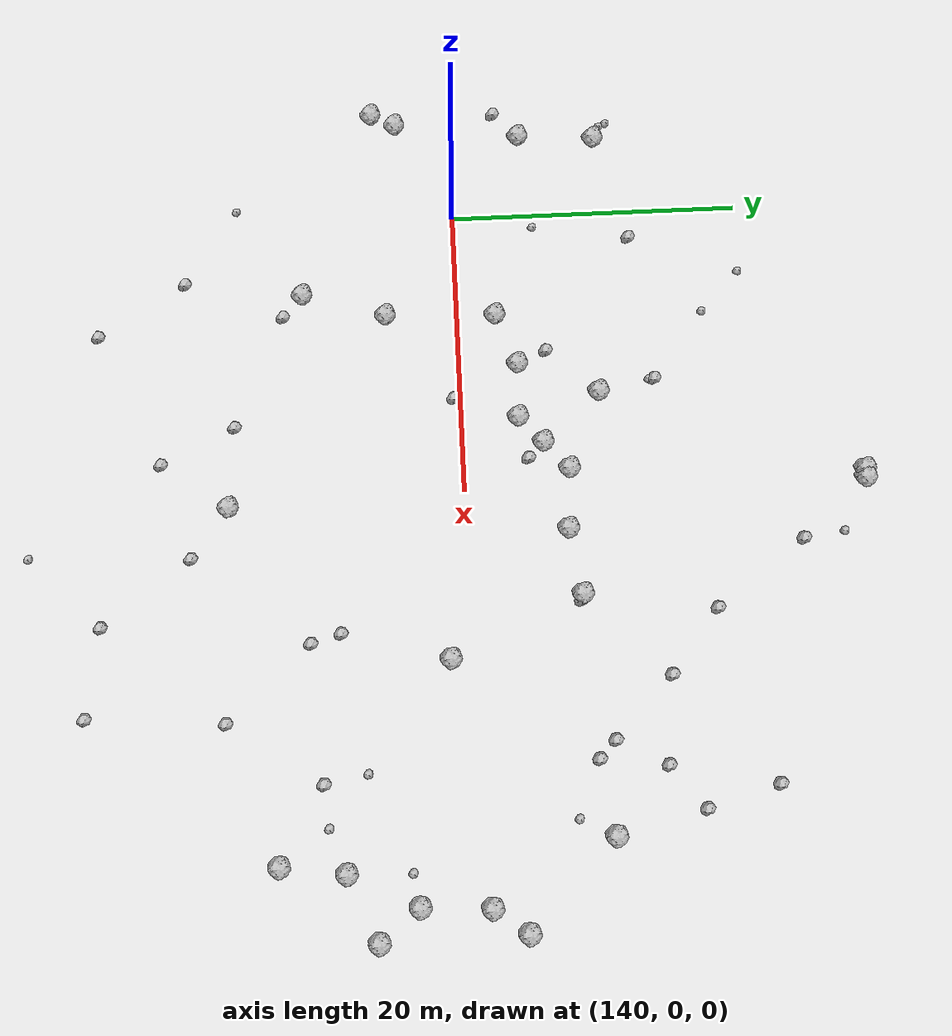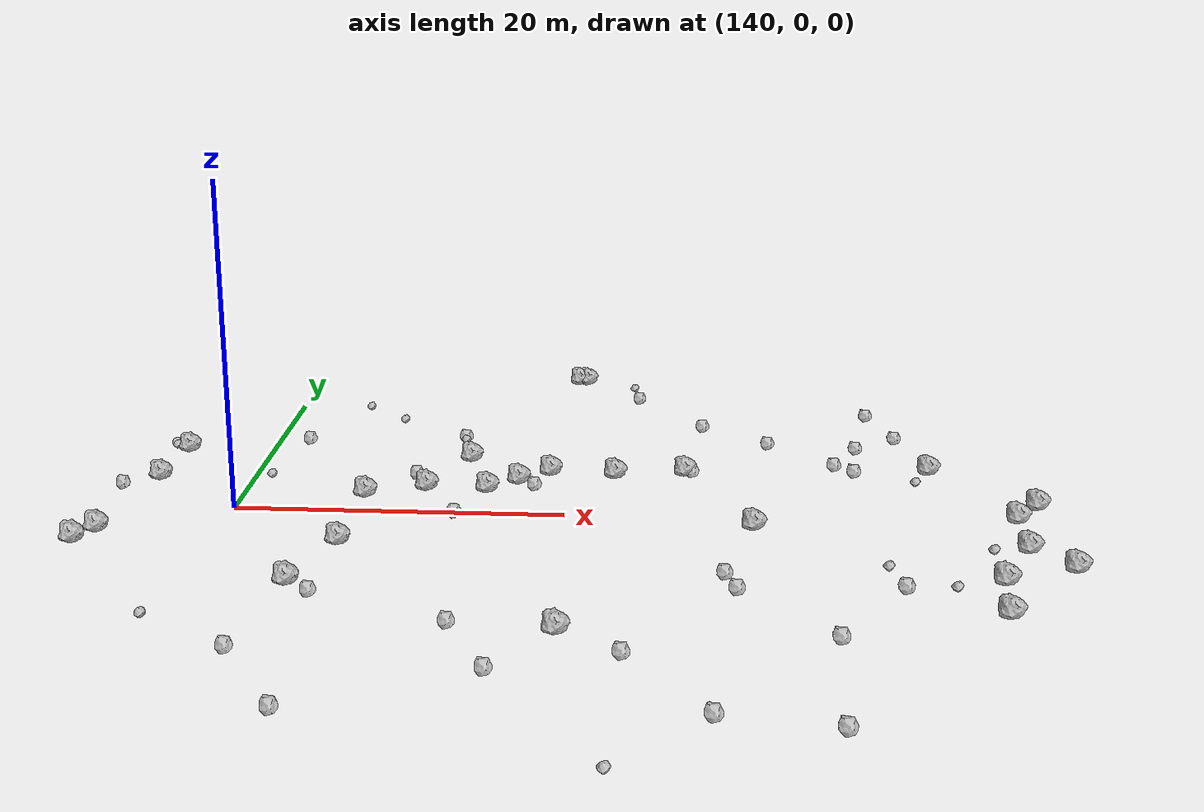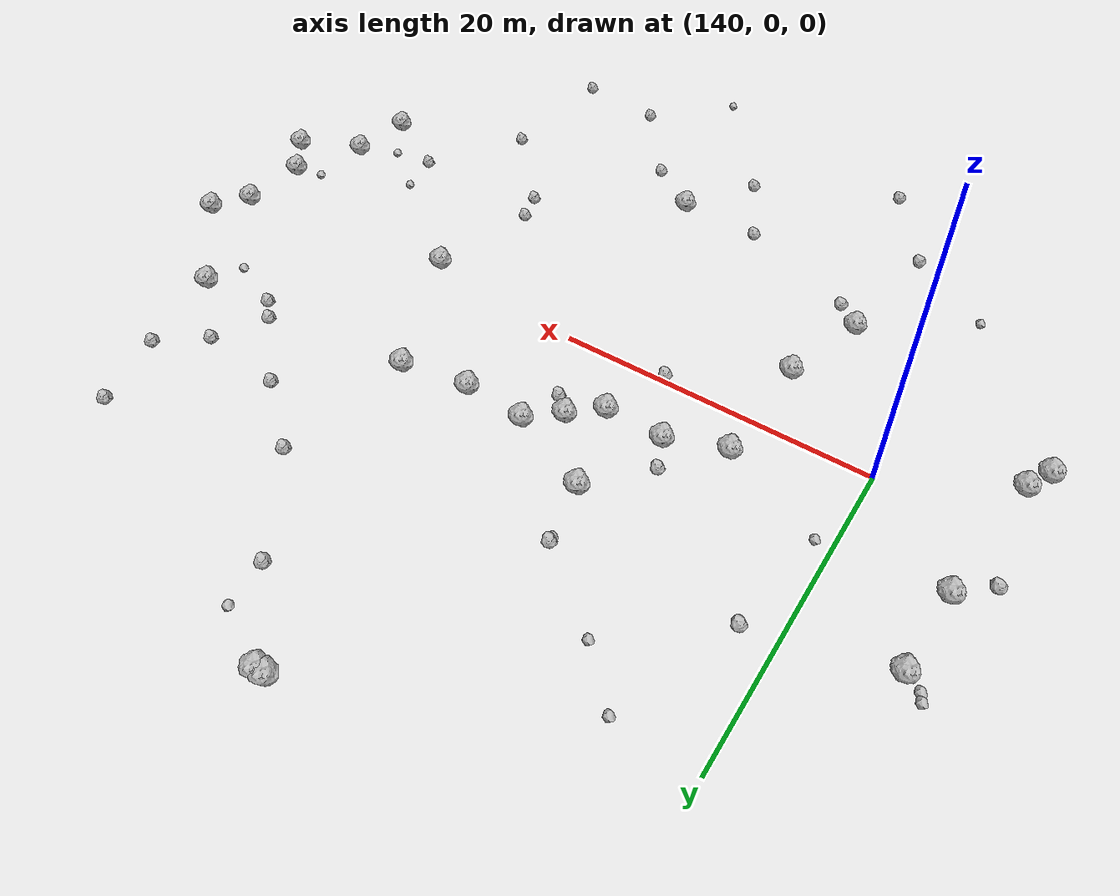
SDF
<sdf version="1.6">
 <world name="default">
  <include><uri>model://sun</uri></include>
  <model name="rock1_4_2">
   <include><uri>model://rock1</uri><pose>187.00550622715133 0.6103401370750916 0.5 0 0 0</pose></include>
  </model>
  <model name="rock1_4_3">
   <include><uri>model://rock1</uri><pose>134.34954489416586 10.308147139617567 0.5 0 0 0</pose></include>
  </model>
  <model name="rock1_4_4">
   <include><uri>model://rock1</uri><pose>183.9584216753731 -12.67865444864849 0.5 0 0 0</pose></include>
  </model>
  <model name="rock1_4_5">
   <include><uri>model://rock1</uri><pose>171.2788944345109 -1.3424860000762209 0.5 0 0 0</pose></include>
  </model>
  <model name="rock1_4_6">
   <include><uri>model://rock1</uri><pose>184.54558585470934 -8.44045858939075 0.5 0 0 0</pose></include>
  </model>
  <model name="rock1_4_7">
   <include><uri>model://rock1</uri><pose>160.5387409248106 -15.850900597289556 0.5 0 0 0</pose></include>
  </model>
  <model name="rock1_4_8">
   <include><uri>model://rock1</uri><pose>131.91497808373379 -5.542450798676562 0.5 0 0 0</pose></include>
  </model>
  <model name="rock1_4_9">
   <include><uri>model://rock1</uri><pose>188.78952291040056 -6.510709008335244 0.5 0 0 0</pose></include>
  </model>
  <model name="rock1_4_10">
   <include><uri>model://rock1</uri><pose>182.935248199146 8.641562064542143 0.5 0 0 0</pose></include>
  </model>
  <model name="rock1_4_11">
   <include><uri>model://rock1</uri><pose>153.3944512263985 9.487726123466459 0.5 0 0 0</pose></include>
  </model>
  <model name="rock1_4_12">
   <include><uri>model://rock1</uri><pose>159.63277634071284 27.069953922631527 0.5 0 0 0</pose></include>
  </model>
  <model name="rock1_4_13">
   <include><uri>model://rock1</uri><pose>160.22288265443294 27.057906458670836 0.5 0 0 0</pose></include>
  </model>
  <model name="rock1_4_14">
   <include><uri>model://rock1</uri><pose>147.52917723722808 2.664538504593125 0.5 0 0 0</pose></include>
  </model>
  <model name="rock1_4_15">
   <include><uri>model://rock1</uri><pose>158.74149719504692 7.171293239102667 0.5 0 0 0</pose></include>
  </model>
  <model name="rock1_4_16">
   <include><uri>model://rock1</uri><pose>188.616479616116 2.837000885398126 0.5 0 0 0</pose></include>
  </model>
  <model name="rock1_4_17">
   <include><uri>model://rock1</uri><pose>156.82016101017408 5.507798254430639 0.5 0 0 0</pose></include>
  </model>
  <model name="rock1_4_18">
   <include><uri>model://rock1</uri><pose>147.2771569033912 -4.937849744133679 0.5 0 0 0</pose></include>
  </model>
  <model name="rock1_4_19">
   <include><uri>model://rock1</uri><pose>132.7766824658629 -3.862351609037347 0.5 0 0 0</pose></include>
  </model>
  <model name="rock1_4_20">
   <include><uri>model://rock1</uri><pose>167.34313789538464 7.531367010324509 0.5 0 0 0</pose></include>
  </model>
  <model name="rock1_4_21">
   <include><uri>model://rock1</uri><pose>133.9767895236569 4.934718757093819 0.5 0 0 0</pose></include>
  </model>
  <model name="rock1_4_22">
   <include><uri>model://rock1</uri><pose>162.89087628736655 6.85362852298222 0.5 0 0 0</pose></include>
  </model>
  <model name="rock1_4_23">
   <include><uri>model://rock1</uri><pose>145.55582621933067 -10.677060882358784 0.5 0 0 0</pose></include>
  </model>
  <model name="rock1_4_24">
   <include><uri>model://rock1</uri><pose>186.7472535983882 -3.90465628346249 0.5 0 0 0</pose></include>
  </model>
  <model name="rock1_4_25">
   <include><uri>model://rock1</uri><pose>154.98172468662318 3.895954091575156 0.5 0 0 0</pose></include>
  </model>
  <model name="rock1_4_26">
   <include><uri>model://rock1</uri><pose>151.16202967781078 4.030362586822605 0.5 0 0 0</pose></include>
  </model>
  <model name="rock2_4_0">
   <include><uri>model://rock2</uri><pose>178.95318555822752 -9.786046382811872 0.3 0 0 0</pose></include>
  </model>
  <model name="rock2_4_1">
   <include><uri>model://rock2</uri><pose>168.27661705096685 -24.262425412030115 0.3 0 0 0</pose></include>
  </model>
  <model name="rock2_4_2">
   <include><uri>model://rock2</uri><pose>150.24464888971056 6.059643822875088 0.3 0 0 0</pose></include>
  </model>
  <model name="rock2_4_3">
   <include><uri>model://rock2</uri><pose>178.07539829524814 7.938073497823616 0.3 0 0 0</pose></include>
  </model>
  <model name="rock2_4_4">
   <include><uri>model://rock2</uri><pose>142.04872494256537 12.34447789493774 0.3 0 0 0</pose></include>
  </model>
  <model name="rock2_4_5">
   <include><uri>model://rock2</uri><pose>152.56127590480423 13.380094838597657 0.3 0 0 0</pose></include>
  </model>
  <model name="rock2_4_6">
   <include><uri>model://rock2</uri><pose>174.86149973999648 -16.046631443861088 0.3 0 0 0</pose></include>
  </model>
  <model name="rock2_4_7">
   <include><uri>model://rock2</uri><pose>178.6307512793593 12.349849822043538 0.3 0 0 0</pose></include>
  </model>
  <model name="rock2_4_8">
   <include><uri>model://rock2</uri><pose>148.00424957566014 -24.794735544757508 0.3 0 0 0</pose></include>
  </model>
  <model name="rock2_4_9">
   <include><uri>model://rock2</uri><pose>176.91514990043154 9.050788503335632 0.3 0 0 0</pose></include>
  </model>
  <model name="rock2_4_10">
   <include><uri>model://rock2</uri><pose>168.60657059640806 16.389098164216016 0.3 0 0 0</pose></include>
  </model>
  <model name="rock2_4_11">
   <include><uri>model://rock2</uri><pose>164.17341931453151 22.53118048860982 0.3 0 0 0</pose></include>
  </model>
  <model name="rock2_4_12">
   <include><uri>model://rock2</uri><pose>132.0809817439482 3.2526000717429397 0.3 0 0 0</pose></include>
  </model>
  <model name="rock2_4_13">
   <include><uri>model://rock2</uri><pose>172.8680363250596 13.022881388473586 0.3 0 0 0</pose></include>
  </model>
  <model name="rock2_4_14">
   <include><uri>model://rock2</uri><pose>181.46945708902152 14.575709627414078 0.3 0 0 0</pose></include>
  </model>
  <model name="rock2_4_15">
   <include><uri>model://rock2</uri><pose>157.35493724682715 -20.403186146363993 0.3 0 0 0</pose></include>
  </model>
  <model name="rock2_4_16">
   <include><uri>model://rock2</uri><pose>167.73570359050856 7.4169920271557785 0.3 0 0 0</pose></include>
  </model>
  <model name="rock2_4_17">
   <include><uri>model://rock2</uri><pose>147.0580451427944 -12.028815807379324 0.3 0 0 0</pose></include>
  </model>
  <model name="rock2_4_18">
   <include><uri>model://rock2</uri><pose>144.34475857110465 -18.831316231610735 0.3 0 0 0</pose></include>
  </model>
  <model name="rock2_4_19">
   <include><uri>model://rock2</uri><pose>180.1046599078495 19.373699159073844 0.3 0 0 0</pose></include>
  </model>
  <model name="rock2_4_20">
   <include><uri>model://rock2</uri><pose>163.9088624305312 -18.343984938143176 0.3 0 0 0</pose></include>
  </model>
  <model name="rock2_4_21">
   <include><uri>model://rock2</uri><pose>153.43136706507636 -0.41820969094354155 0.3 0 0 0</pose></include>
  </model>
  <model name="rock2_4_22">
   <include><uri>model://rock2</uri><pose>169.88747461974896 -10.479380322635421 0.3 0 0 0</pose></include>
  </model>
  <model name="rock2_4_23">
   <include><uri>model://rock2</uri><pose>157.8650729836881 4.476762236503909 0.3 0 0 0</pose></include>
  </model>
  <model name="rock2_4_24">
   <include><uri>model://rock2</uri><pose>154.91646507470395 -15.405133281100225 0.3 0 0 0</pose></include>
  </model>
  <model name="rock2_4_25">
   <include><uri>model://rock2</uri><pose>174.21432399085427 -25.182709747841898 0.3 0 0 0</pose></include>
  </model>
  <model name="rock2_4_26">
   <include><uri>model://rock2</uri><pose>169.30431378961268 -8.481063761585915 0.3 0 0 0</pose></include>
  </model>
  <model name="rock3_4_0">
   <include><uri>model://rock3</uri><pose>138.95079636043357 -15.270064800626802 0.2 0 0 0</pose></include>
  </model>
  <model name="rock3_4_1">
   <include><uri>model://rock3</uri><pose>140.9672847900707 5.607822490708024 0.2 0 0 0</pose></include>
  </model>
  <model name="rock3_4_2">
   <include><uri>model://rock3</uri><pose>163.45810094811634 -29.203571842908328 0.2 0 0 0</pose></include>
  </model>
  <model name="rock3_4_3">
   <include><uri>model://rock3</uri><pose>178.4014836363623 -6.966163219214955 0.2 0 0 0</pose></include>
  </model>
  <model name="rock3_4_4">
   <include><uri>model://rock3</uri><pose>133.07940442320452 11.302927871134571 0.2 0 0 0</pose></include>
  </model>
  <model name="rock3_4_5">
   <include><uri>model://rock3</uri><pose>184.6380874245746 -4.300360401211535 0.2 0 0 0</pose></include>
  </model>
  <model name="rock3_4_6">
   <include><uri>model://rock3</uri><pose>163.7756267778962 25.295214045764055 0.2 0 0 0</pose></include>
  </model>
  <model name="rock3_4_7">
   <include><uri>model://rock3</uri><pose>181.70350206024276 -9.538589583018787 0.2 0 0 0</pose></include>
  </model>
  <model name="rock3_4_8">
   <include><uri>model://rock3</uri><pose>144.88185349811104 19.819282661021454 0.2 0 0 0</pose></include>
  </model>
  <model name="rock3_4_9">
   <include><uri>model://rock3</uri><pose>147.76685987852193 17.03842570683323 0.2 0 0 0</pose></include>
  </model>
  <model name="rock3_4_10">
   <include><uri>model://rock3</uri><pose>133.311494272569 10.8218114252956 0.2 0 0 0</pose></include>
  </model>
  <model name="rock3_4_11">
   <include><uri>model://rock3</uri><pose>152.56421660731883 12.998917080770951 0.2 0 0 0</pose></include>
  </model>
  <model name="rock3_4_12">
   <include><uri>model://rock3</uri><pose>181.76050998838036 6.374592272585346 0.2 0 0 0</pose></include>
  </model>
 </world>
</sdf>
